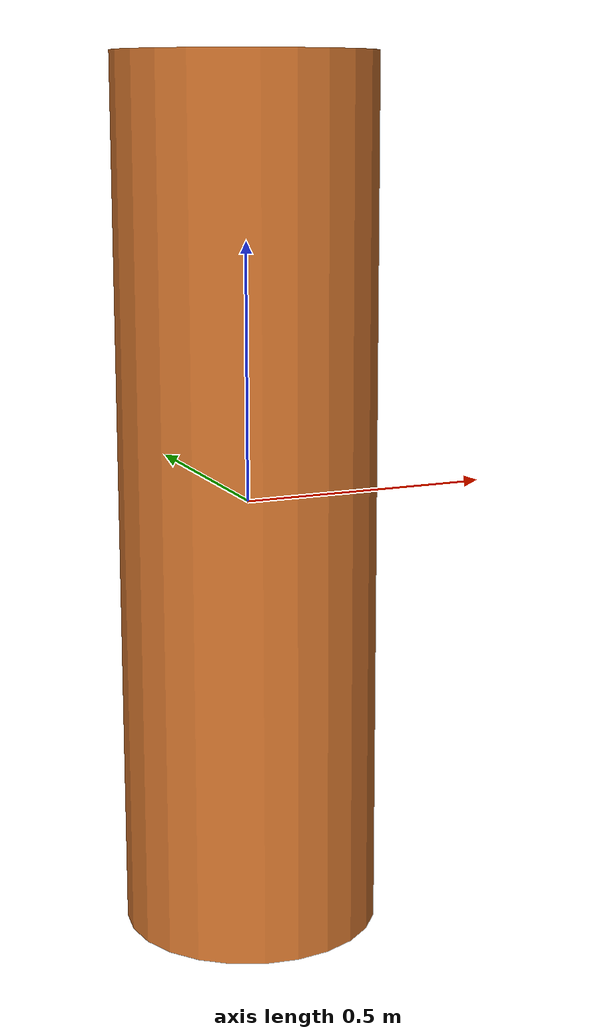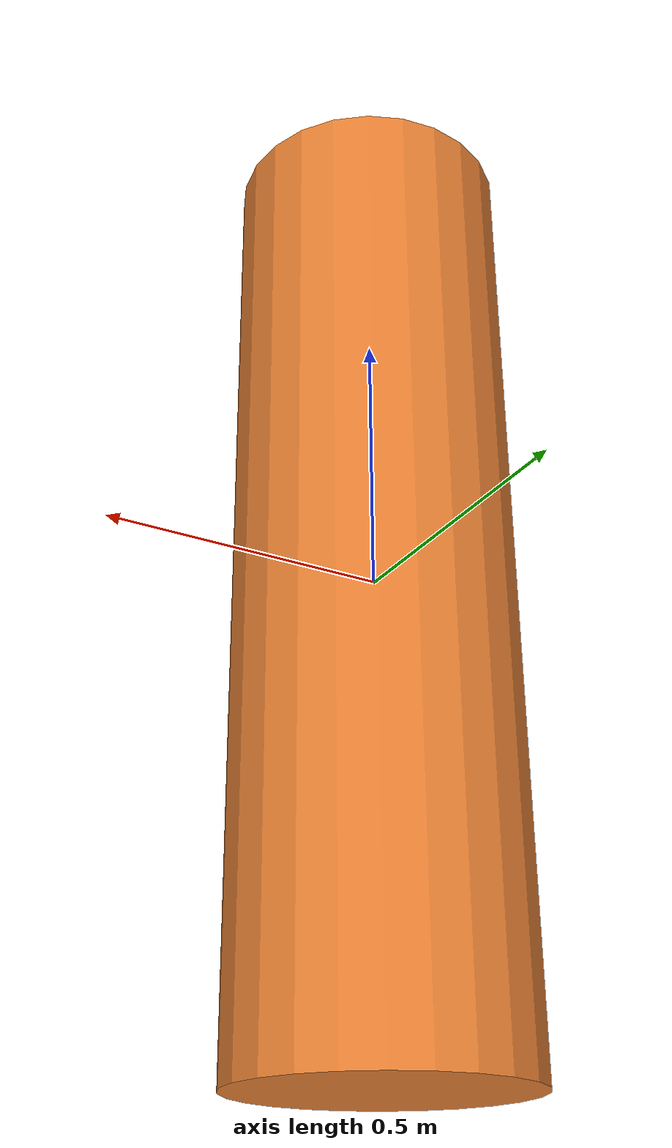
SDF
<?xml version="1.0" ?>
<sdf version="1.6">
  <model name="pedestrian">
    <static>false</static>
    <link name="link">
      <inertial>
        <mass>70.0</mass>
        <inertia>
          <ixx>17.0</ixx>
          <iyy>17.0</iyy>
          <izz>1.1</izz>
          <ixy>0</ixy>
          <ixz>0</ixz>
          <iyz>0</iyz>
        </inertia>
      </inertial>
      <collision name="collision">
        <geometry>
          <cylinder>
            <radius>0.25</radius>
            <length>1.7</length>
          </cylinder>
        </geometry>
      </collision>
      <visual name="visual">
        <geometry>
          <cylinder>
            <radius>0.25</radius>
            <length>1.7</length>
          </cylinder>
        </geometry>
        <material>
          <ambient>0.8 0.4 0.1 1</ambient>
          <diffuse>0.9 0.5 0.2 1</diffuse>
        </material>
      </visual>
    </link>
  </model>
</sdf>
